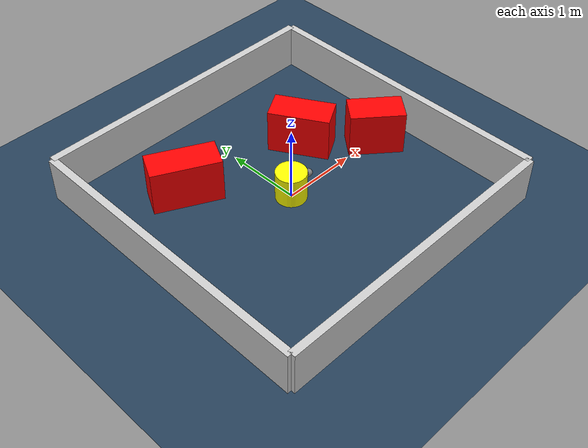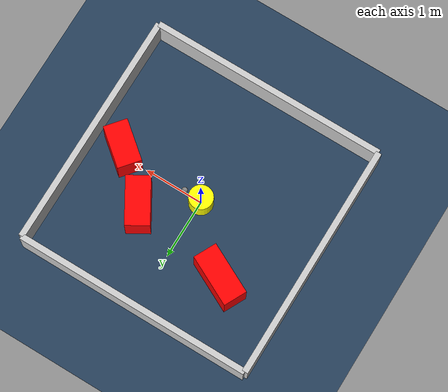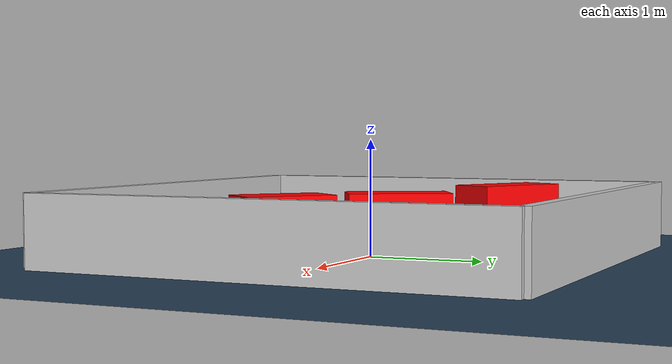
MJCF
<?xml version="1.0" ?>
<mujoco model="generated_environment">
  <option timestep="0.01" integrator="RK4" cone="elliptic"/>
  <default>
    <geom density="1"/>
  </default>
  <asset>
    <texture builtin="gradient" height="3072" rgb1="0.3 0.5 0.7" rgb2="0 0 0" type="skybox" width="512"/>
    <texture builtin="checker" height="300" mark="edge" markrgb="0.8 0.8 0.8" name="groundplane" rgb1="0.2 0.3 0.4" rgb2="0.1 0.2 0.3" type="2d" width="300"/>
    <material name="groundplane" reflectance="0.2" texrepeat="5 5" texture="groundplane" texuniform="true"/>
    <material name="robot" rgba="0.0 1.0 0.0 1"/>
  </asset>
  <worldbody>
    <light dir="0 0 -1" directional="true" pos="0 0 1.5"/>
    <geom condim="4" friction="1.0 0.005 0.001" material="groundplane" name="floor" size="0 0 0.05" type="plane"/>
    <body name="walls">
      <geom name="wall_1" condim="4" pos="-2.0 0.0 0.3" rgba="0.800000011920929 0.800000011920929 0.800000011920929 1.0" size="0.05 2.0 0.3" type="box"/>
      <geom name="wall_2" condim="4" pos="2.0 0.0 0.3" rgba="0.800000011920929 0.800000011920929 0.800000011920929 1.0" size="0.05 2.0 0.3" type="box"/>
      <geom name="wall_3" condim="4" pos="0.0 -2.0 0.3" rgba="0.800000011920929 0.800000011920929 0.800000011920929 1.0" size="2.0 0.05 0.3" type="box"/>
      <geom name="wall_4" condim="4" pos="0.0 2.0 0.3" rgba="0.800000011920929 0.800000011920929 0.800000011920929 1.0" size="2.0 0.05 0.3" type="box"/>
    </body>
    <body name="robot">
      <joint name="joint_x" type="slide" pos="0 0 0" axis="1 0 0"/>
      <joint name="joint_y" type="slide" pos="0 0 0" axis="0 1 0"/>
      <geom name="robot" type="sphere" pos="0.3 0.0 0.2" size="0.05" mass="5." friction="1.0 0.005 0.0001" condim="4" rgba="0.5 0.5 0.5 1.0"/>
      <site name="sensor_ball"/>
    </body>
    <body name="obstacle_movable_1">
      <geom name="obstacle_movable_1" condim="4" pos="0.0 0.0 0.2" euler="0 0 0.0" friction="1.0 0.005 0.001" rgba="1.0 1.0 0.0 1.0" size="0.2 0.2 0.0" type="cylinder" mass="0.1"/>
      <joint type="free"/>
    </body>
    <body name="obstacle_2_static">
      <geom name="obstacle_2_static" condim="4" pos="-0.9027518666064388 0.9177901865991827 0.3" euler="0 0 153.24327447849183" friction="1.0 0.005 0.001" rgba="1 0 0 1" size="0.44197983894263965 0.2 0.3" type="box"/>
    </body>
    <body name="obstacle_3_static">
      <geom name="obstacle_3_static" condim="4" pos="1.4621360026343058 -0.05329708307969705 0.3" euler="0 0 140.5737264684421" friction="1.0 0.005 0.001" rgba="1 0 0 1" size="0.35406383192424096 0.2 0.3" type="box"/>
    </body>
    <body name="obstacle_4_static">
      <geom name="obstacle_4_static" condim="4" pos="0.7808884479684952 0.5908335234518634 0.3" euler="0 0 120.66590127417739" friction="1.0 0.005 0.001" rgba="1 0 0 1" size="0.39874219544880807 0.2 0.3" type="box"/>
    </body>
  </worldbody>
  <actuator>
    <motor name="actuator_x" joint="joint_x" gear="1" ctrlrange="-1 1"/>
    <motor name="actuator_y" joint="joint_y" gear="1" ctrlrange="-1 1"/>
  </actuator>
</mujoco>
